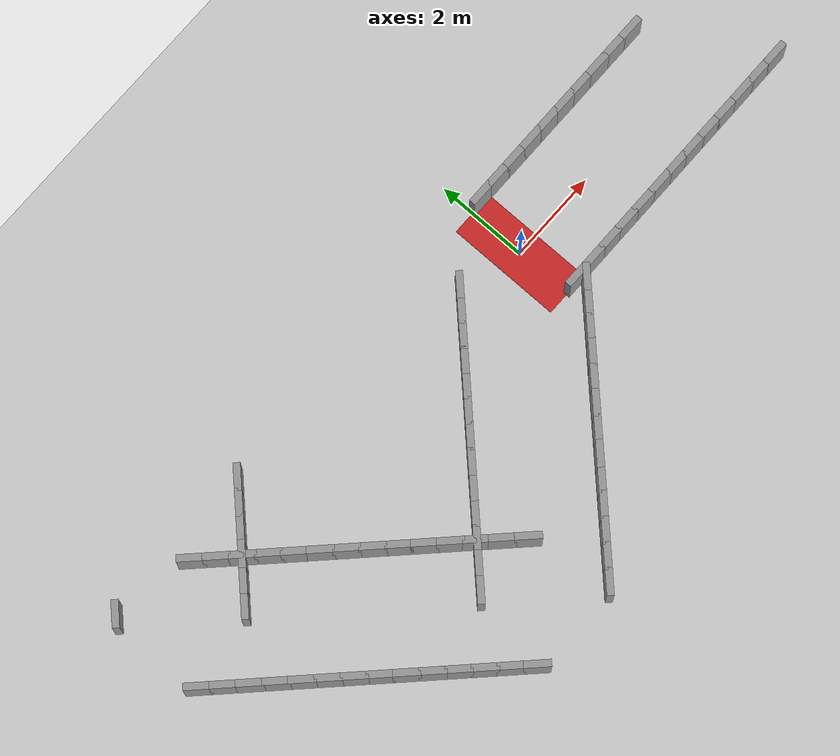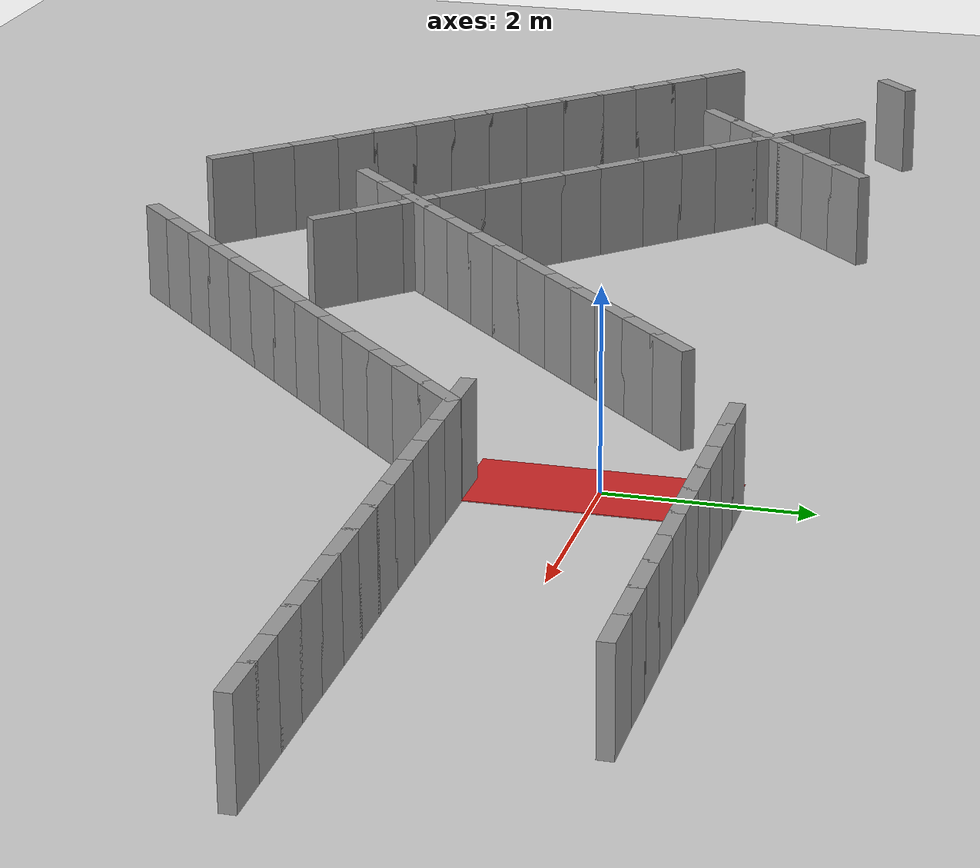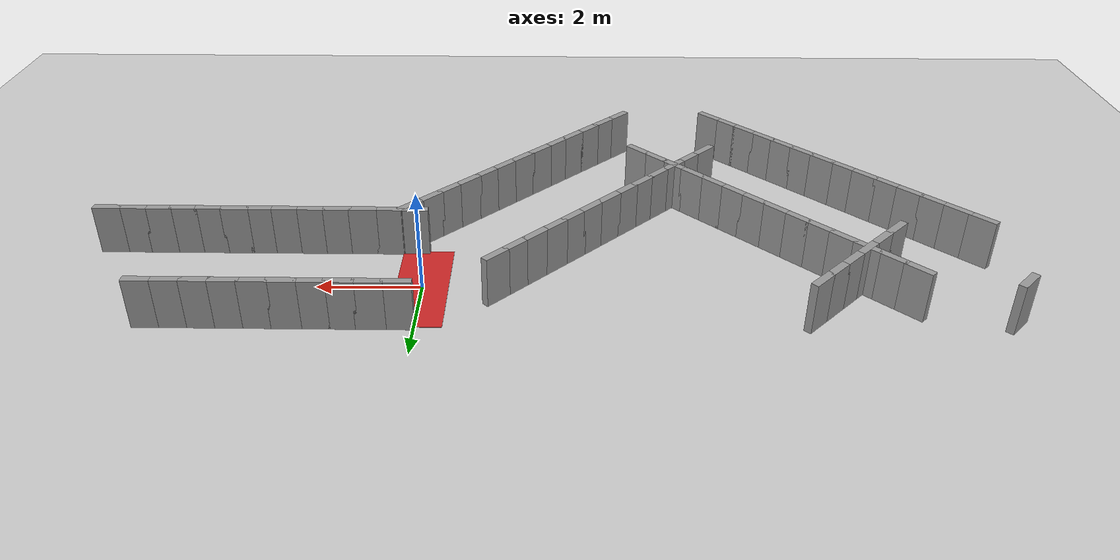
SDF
<sdf version="1.6">
 <world name="robot_harmonic_track">
  <include><uri>model://sun</uri></include>
  <include><uri>model://ground_plane</uri></include>
  <model name="wall_inner_0">
   <pose>0.25 1.25 0.5 0 0 0.0</pose>
   <static>1</static>
   <link name="link">
    <collision name="collision"><geometry><box><size>0.55 0.15 1.0</size></box></geometry></collision>
    <visual name="visual">
     <geometry><box><size>0.55 0.15 1.0</size></box></geometry>
     <material>
      <script><uri>file://media/materials/scripts/gazebo.material</uri><name>Gazebo/Grey</name></script>
     </material>
    </visual>
   </link>
  </model>
  <model name="wall_outer_0">
   <pose>0.25 -1.25 0.5 0 0 0.0</pose>
   <static>1</static>
   <link name="link">
    <collision name="collision"><geometry><box><size>0.55 0.15 1.0</size></box></geometry></collision>
    <visual name="visual">
     <geometry><box><size>0.55 0.15 1.0</size></box></geometry>
     <material>
      <script><uri>file://media/materials/scripts/gazebo.material</uri><name>Gazebo/Grey</name></script>
     </material>
    </visual>
   </link>
  </model>
  <model name="wall_inner_1">
   <pose>0.75 1.25 0.5 0 0 0.0</pose>
   <static>1</static>
   <link name="link">
    <collision name="collision"><geometry><box><size>0.55 0.15 1.0</size></box></geometry></collision>
    <visual name="visual">
     <geometry><box><size>0.55 0.15 1.0</size></box></geometry>
     <material>
      <script><uri>file://media/materials/scripts/gazebo.material</uri><name>Gazebo/Grey</name></script>
     </material>
    </visual>
   </link>
  </model>
  <model name="wall_outer_1">
   <pose>0.75 -1.25 0.5 0 0 0.0</pose>
   <static>1</static>
   <link name="link">
    <collision name="collision"><geometry><box><size>0.55 0.15 1.0</size></box></geometry></collision>
    <visual name="visual">
     <geometry><box><size>0.55 0.15 1.0</size></box></geometry>
     <material>
      <script><uri>file://media/materials/scripts/gazebo.material</uri><name>Gazebo/Grey</name></script>
     </material>
    </visual>
   </link>
  </model>
  <model name="wall_inner_2">
   <pose>1.25 1.25 0.5 0 0 0.0</pose>
   <static>1</static>
   <link name="link">
    <collision name="collision"><geometry><box><size>0.55 0.15 1.0</size></box></geometry></collision>
    <visual name="visual">
     <geometry><box><size>0.55 0.15 1.0</size></box></geometry>
     <material>
      <script><uri>file://media/materials/scripts/gazebo.material</uri><name>Gazebo/Grey</name></script>
     </material>
    </visual>
   </link>
  </model>
  <model name="wall_outer_2">
   <pose>1.25 -1.25 0.5 0 0 0.0</pose>
   <static>1</static>
   <link name="link">
    <collision name="collision"><geometry><box><size>0.55 0.15 1.0</size></box></geometry></collision>
    <visual name="visual">
     <geometry><box><size>0.55 0.15 1.0</size></box></geometry>
     <material>
      <script><uri>file://media/materials/scripts/gazebo.material</uri><name>Gazebo/Grey</name></script>
     </material>
    </visual>
   </link>
  </model>
  <model name="wall_inner_3">
   <pose>1.75 1.25 0.5 0 0 0.0</pose>
   <static>1</static>
   <link name="link">
    <collision name="collision"><geometry><box><size>0.55 0.15 1.0</size></box></geometry></collision>
    <visual name="visual">
     <geometry><box><size>0.55 0.15 1.0</size></box></geometry>
     <material>
      <script><uri>file://media/materials/scripts/gazebo.material</uri><name>Gazebo/Grey</name></script>
     </material>
    </visual>
   </link>
  </model>
  <model name="wall_outer_3">
   <pose>1.75 -1.25 0.5 0 0 0.0</pose>
   <static>1</static>
   <link name="link">
    <collision name="collision"><geometry><box><size>0.55 0.15 1.0</size></box></geometry></collision>
    <visual name="visual">
     <geometry><box><size>0.55 0.15 1.0</size></box></geometry>
     <material>
      <script><uri>file://media/materials/scripts/gazebo.material</uri><name>Gazebo/Grey</name></script>
     </material>
    </visual>
   </link>
  </model>
  <model name="wall_inner_4">
   <pose>2.25 1.25 0.5 0 0 0.0</pose>
   <static>1</static>
   <link name="link">
    <collision name="collision"><geometry><box><size>0.55 0.15 1.0</size></box></geometry></collision>
    <visual name="visual">
     <geometry><box><size>0.55 0.15 1.0</size></box></geometry>
     <material>
      <script><uri>file://media/materials/scripts/gazebo.material</uri><name>Gazebo/Grey</name></script>
     </material>
    </visual>
   </link>
  </model>
  <model name="wall_outer_4">
   <pose>2.25 -1.25 0.5 0 0 0.0</pose>
   <static>1</static>
   <link name="link">
    <collision name="collision"><geometry><box><size>0.55 0.15 1.0</size></box></geometry></collision>
    <visual name="visual">
     <geometry><box><size>0.55 0.15 1.0</size></box></geometry>
     <material>
      <script><uri>file://media/materials/scripts/gazebo.material</uri><name>Gazebo/Grey</name></script>
     </material>
    </visual>
   </link>
  </model>
  <model name="wall_inner_5">
   <pose>2.75 1.25 0.5 0 0 0.0</pose>
   <static>1</static>
   <link name="link">
    <collision name="collision"><geometry><box><size>0.55 0.15 1.0</size></box></geometry></collision>
    <visual name="visual">
     <geometry><box><size>0.55 0.15 1.0</size></box></geometry>
     <material>
      <script><uri>file://media/materials/scripts/gazebo.material</uri><name>Gazebo/Grey</name></script>
     </material>
    </visual>
   </link>
  </model>
  <model name="wall_outer_5">
   <pose>2.75 -1.25 0.5 0 0 0.0</pose>
   <static>1</static>
   <link name="link">
    <collision name="collision"><geometry><box><size>0.55 0.15 1.0</size></box></geometry></collision>
    <visual name="visual">
     <geometry><box><size>0.55 0.15 1.0</size></box></geometry>
     <material>
      <script><uri>file://media/materials/scripts/gazebo.material</uri><name>Gazebo/Grey</name></script>
     </material>
    </visual>
   </link>
  </model>
  <model name="wall_inner_6">
   <pose>3.25 1.25 0.5 0 0 0.0</pose>
   <static>1</static>
   <link name="link">
    <collision name="collision"><geometry><box><size>0.55 0.15 1.0</size></box></geometry></collision>
    <visual name="visual">
     <geometry><box><size>0.55 0.15 1.0</size></box></geometry>
     <material>
      <script><uri>file://media/materials/scripts/gazebo.material</uri><name>Gazebo/Grey</name></script>
     </material>
    </visual>
   </link>
  </model>
  <model name="wall_outer_6">
   <pose>3.25 -1.25 0.5 0 0 0.0</pose>
   <static>1</static>
   <link name="link">
    <collision name="collision"><geometry><box><size>0.55 0.15 1.0</size></box></geometry></collision>
    <visual name="visual">
     <geometry><box><size>0.55 0.15 1.0</size></box></geometry>
     <material>
      <script><uri>file://media/materials/scripts/gazebo.material</uri><name>Gazebo/Grey</name></script>
     </material>
    </visual>
   </link>
  </model>
  <model name="wall_inner_7">
   <pose>3.75 1.25 0.5 0 0 0.0</pose>
   <static>1</static>
   <link name="link">
    <collision name="collision"><geometry><box><size>0.55 0.15 1.0</size></box></geometry></collision>
    <visual name="visual">
     <geometry><box><size>0.55 0.15 1.0</size></box></geometry>
     <material>
      <script><uri>file://media/materials/scripts/gazebo.material</uri><name>Gazebo/Grey</name></script>
     </material>
    </visual>
   </link>
  </model>
  <model name="wall_outer_7">
   <pose>3.75 -1.25 0.5 0 0 0.0</pose>
   <static>1</static>
   <link name="link">
    <collision name="collision"><geometry><box><size>0.55 0.15 1.0</size></box></geometry></collision>
    <visual name="visual">
     <geometry><box><size>0.55 0.15 1.0</size></box></geometry>
     <material>
      <script><uri>file://media/materials/scripts/gazebo.material</uri><name>Gazebo/Grey</name></script>
     </material>
    </visual>
   </link>
  </model>
  <model name="wall_inner_8">
   <pose>4.25 1.25 0.5 0 0 0.0</pose>
   <static>1</static>
   <link name="link">
    <collision name="collision"><geometry><box><size>0.55 0.15 1.0</size></box></geometry></collision>
    <visual name="visual">
     <geometry><box><size>0.55 0.15 1.0</size></box></geometry>
     <material>
      <script><uri>file://media/materials/scripts/gazebo.material</uri><name>Gazebo/Grey</name></script>
     </material>
    </visual>
   </link>
  </model>
  <model name="wall_outer_8">
   <pose>4.25 -1.25 0.5 0 0 0.0</pose>
   <static>1</static>
   <link name="link">
    <collision name="collision"><geometry><box><size>0.55 0.15 1.0</size></box></geometry></collision>
    <visual name="visual">
     <geometry><box><size>0.55 0.15 1.0</size></box></geometry>
     <material>
      <script><uri>file://media/materials/scripts/gazebo.material</uri><name>Gazebo/Grey</name></script>
     </material>
    </visual>
   </link>
  </model>
  <model name="wall_inner_9">
   <pose>4.75 1.25 0.5 0 0 0.0</pose>
   <static>1</static>
   <link name="link">
    <collision name="collision"><geometry><box><size>0.55 0.15 1.0</size></box></geometry></collision>
    <visual name="visual">
     <geometry><box><size>0.55 0.15 1.0</size></box></geometry>
     <material>
      <script><uri>file://media/materials/scripts/gazebo.material</uri><name>Gazebo/Grey</name></script>
     </material>
    </visual>
   </link>
  </model>
  <model name="wall_outer_9">
   <pose>4.75 -1.25 0.5 0 0 0.0</pose>
   <static>1</static>
   <link name="link">
    <collision name="collision"><geometry><box><size>0.55 0.15 1.0</size></box></geometry></collision>
    <visual name="visual">
     <geometry><box><size>0.55 0.15 1.0</size></box></geometry>
     <material>
      <script><uri>file://media/materials/scripts/gazebo.material</uri><name>Gazebo/Grey</name></script>
     </material>
    </visual>
   </link>
  </model>
  <model name="wall_outer_10">
   <pose>5.25 -1.25 0.5 0 0 0.0</pose>
   <static>1</static>
   <link name="link">
    <collision name="collision"><geometry><box><size>0.55 0.15 1.0</size></box></geometry></collision>
    <visual name="visual">
     <geometry><box><size>0.55 0.15 1.0</size></box></geometry>
     <material>
      <script><uri>file://media/materials/scripts/gazebo.material</uri><name>Gazebo/Grey</name></script>
     </material>
    </visual>
   </link>
  </model>
  <model name="wall_outer_11">
   <pose>5.75 -1.25 0.5 0 0 0.0</pose>
   <static>1</static>
   <link name="link">
    <collision name="collision"><geometry><box><size>0.55 0.15 1.0</size></box></geometry></collision>
    <visual name="visual">
     <geometry><box><size>0.55 0.15 1.0</size></box></geometry>
     <material>
      <script><uri>file://media/materials/scripts/gazebo.material</uri><name>Gazebo/Grey</name></script>
     </material>
    </visual>
   </link>
  </model>
  <model name="wall_outer_12">
   <pose>6.25 -1.25 0.5 0 0 0.0</pose>
   <static>1</static>
   <link name="link">
    <collision name="collision"><geometry><box><size>0.55 0.15 1.0</size></box></geometry></collision>
    <visual name="visual">
     <geometry><box><size>0.55 0.15 1.0</size></box></geometry>
     <material>
      <script><uri>file://media/materials/scripts/gazebo.material</uri><name>Gazebo/Grey</name></script>
     </material>
    </visual>
   </link>
  </model>
  <model name="wall_inner_179">
   <pose>-7.151830809231103 1.080402237802529 0.5 0 0 -2.356194490192346</pose>
   <static>1</static>
   <link name="link">
    <collision name="collision">
     <geometry><box><size>0.5550762722761068 0.15 1.0</size></box></geometry>
    </collision>
    <visual name="visual">
     <geometry><box><size>0.5550762722761068 0.15 1.0</size></box></geometry>
     <material>
      <script><uri>file://media/materials/scripts/gazebo.material</uri><name>Gazebo/Grey</name></script>
     </material>
    </visual>
   </link>
  </model>
  <model name="wall_inner_180">
   <pose>-7.508973666373956 0.7232593806596742 0.5 0 0 -2.356194490192343</pose>
   <static>1</static>
   <link name="link">
    <collision name="collision">
     <geometry><box><size>0.5550762722761046 0.15 1.0</size></box></geometry>
    </collision>
    <visual name="visual">
     <geometry><box><size>0.5550762722761046 0.15 1.0</size></box></geometry>
     <material>
      <script><uri>file://media/materials/scripts/gazebo.material</uri><name>Gazebo/Grey</name></script>
     </material>
    </visual>
   </link>
  </model>
  <model name="wall_inner_181">
   <pose>-7.8661165235168165 0.36611652351681456 0.5 0 0 -2.356194490192346</pose>
   <static>1</static>
   <link name="link">
    <collision name="collision">
     <geometry><box><size>0.5550762722761055 0.15 1.0</size></box></geometry>
    </collision>
    <visual name="visual">
     <geometry><box><size>0.5550762722761055 0.15 1.0</size></box></geometry>
     <material>
      <script><uri>file://media/materials/scripts/gazebo.material</uri><name>Gazebo/Grey</name></script>
     </material>
    </visual>
   </link>
  </model>
  <model name="wall_inner_182">
   <pose>-8.223259380659671 0.008973666373960243 0.5 0 0 -2.356194490192343</pose>
   <static>1</static>
   <link name="link">
    <collision name="collision">
     <geometry><box><size>0.5550762722761046 0.15 1.0</size></box></geometry>
    </collision>
    <visual name="visual">
     <geometry><box><size>0.5550762722761046 0.15 1.0</size></box></geometry>
     <material>
      <script><uri>file://media/materials/scripts/gazebo.material</uri><name>Gazebo/Grey</name></script>
     </material>
    </visual>
   </link>
  </model>
  <model name="wall_inner_183">
   <pose>-8.580402237802529 -0.34816919076889874 0.5 0 0 -2.356194490192345</pose>
   <static>1</static>
   <link name="link">
    <collision name="collision">
     <geometry><box><size>0.5550762722761061 0.15 1.0</size></box></geometry>
    </collision>
    <visual name="visual">
     <geometry><box><size>0.5550762722761061 0.15 1.0</size></box></geometry>
     <material>
      <script><uri>file://media/materials/scripts/gazebo.material</uri><name>Gazebo/Grey</name></script>
     </material>
    </visual>
   </link>
  </model>
  <model name="wall_inner_184">
   <pose>-8.937545094945389 -0.7053120479117571 0.5 0 0 -2.356194490192346</pose>
   <static>1</static>
   <link name="link">
    <collision name="collision">
     <geometry><box><size>0.5550762722761055 0.15 1.0</size></box></geometry>
    </collision>
    <visual name="visual">
     <geometry><box><size>0.5550762722761055 0.15 1.0</size></box></geometry>
     <material>
      <script><uri>file://media/materials/scripts/gazebo.material</uri><name>Gazebo/Grey</name></script>
     </material>
    </visual>
   </link>
  </model>
  <model name="wall_outer_184">
   <pose>-10.705312047911754 1.0624549050546137 0.5 0 0 -2.356194490192346</pose>
   <static>1</static>
   <link name="link">
    <collision name="collision">
     <geometry><box><size>0.5550762722761055 0.15 1.0</size></box></geometry>
    </collision>
    <visual name="visual">
     <geometry><box><size>0.5550762722761055 0.15 1.0</size></box></geometry>
     <material>
      <script><uri>file://media/materials/scripts/gazebo.material</uri><name>Gazebo/Grey</name></script>
     </material>
    </visual>
   </link>
  </model>
  <model name="wall_inner_185">
   <pose>-8.937545094945387 0.7053120479117565 0.5 0 0 -0.7853981633974475</pose>
   <static>1</static>
   <link name="link">
    <collision name="collision">
     <geometry><box><size>0.5550762722761058 0.15 1.0</size></box></geometry>
    </collision>
    <visual name="visual">
     <geometry><box><size>0.5550762722761058 0.15 1.0</size></box></geometry>
     <material>
      <script><uri>file://media/materials/scripts/gazebo.material</uri><name>Gazebo/Grey</name></script>
     </material>
    </visual>
   </link>
  </model>
  <model name="wall_outer_185">
   <pose>-10.705312047911756 -1.0624549050546137 0.5 0 0 -0.7853981633974475</pose>
   <static>1</static>
   <link name="link">
    <collision name="collision">
     <geometry><box><size>0.5550762722761058 0.15 1.0</size></box></geometry>
    </collision>
    <visual name="visual">
     <geometry><box><size>0.5550762722761058 0.15 1.0</size></box></geometry>
     <material>
      <script><uri>file://media/materials/scripts/gazebo.material</uri><name>Gazebo/Grey</name></script>
     </material>
    </visual>
   </link>
  </model>
  <model name="wall_inner_186">
   <pose>-8.580402237802529 0.3481691907688972 0.5 0 0 -0.78539816339745</pose>
   <static>1</static>
   <link name="link">
    <collision name="collision">
     <geometry><box><size>0.5550762722761045 0.15 1.0</size></box></geometry>
    </collision>
    <visual name="visual">
     <geometry><box><size>0.5550762722761045 0.15 1.0</size></box></geometry>
     <material>
      <script><uri>file://media/materials/scripts/gazebo.material</uri><name>Gazebo/Grey</name></script>
     </material>
    </visual>
   </link>
  </model>
  <model name="wall_outer_186">
   <pose>-10.348169190768902 -1.4195977621974682 0.5 0 0 -0.78539816339745</pose>
   <static>1</static>
   <link name="link">
    <collision name="collision">
     <geometry><box><size>0.5550762722761045 0.15 1.0</size></box></geometry>
    </collision>
    <visual name="visual">
     <geometry><box><size>0.5550762722761045 0.15 1.0</size></box></geometry>
     <material>
      <script><uri>file://media/materials/scripts/gazebo.material</uri><name>Gazebo/Grey</name></script>
     </material>
    </visual>
   </link>
  </model>
  <model name="wall_inner_187">
   <pose>-8.223259380659673 -0.008973666373957911 0.5 0 0 -0.7853981633974477</pose>
   <static>1</static>
   <link name="link">
    <collision name="collision">
     <geometry><box><size>0.5550762722761058 0.15 1.0</size></box></geometry>
    </collision>
    <visual name="visual">
     <geometry><box><size>0.5550762722761058 0.15 1.0</size></box></geometry>
     <material>
      <script><uri>file://media/materials/scripts/gazebo.material</uri><name>Gazebo/Grey</name></script>
     </material>
    </visual>
   </link>
  </model>
  <model name="wall_outer_187">
   <pose>-9.991026333626042 -1.7767406193403277 0.5 0 0 -0.7853981633974477</pose>
   <static>1</static>
   <link name="link">
    <collision name="collision">
     <geometry><box><size>0.5550762722761058 0.15 1.0</size></box></geometry>
    </collision>
    <visual name="visual">
     <geometry><box><size>0.5550762722761058 0.15 1.0</size></box></geometry>
     <material>
      <script><uri>file://media/materials/scripts/gazebo.material</uri><name>Gazebo/Grey</name></script>
     </material>
    </visual>
   </link>
  </model>
  <model name="wall_inner_188">
   <pose>-7.8661165235168165 -0.3661165235168149 0.5 0 0 -0.7853981633974474</pose>
   <static>1</static>
   <link name="link">
    <collision name="collision">
     <geometry><box><size>0.5550762722761057 0.15 1.0</size></box></geometry>
    </collision>
    <visual name="visual">
     <geometry><box><size>0.5550762722761057 0.15 1.0</size></box></geometry>
     <material>
      <script><uri>file://media/materials/scripts/gazebo.material</uri><name>Gazebo/Grey</name></script>
     </material>
    </visual>
   </link>
  </model>
  <model name="wall_outer_188">
   <pose>-9.633883476483184 -2.1338834764831853 0.5 0 0 -0.7853981633974474</pose>
   <static>1</static>
   <link name="link">
    <collision name="collision">
     <geometry><box><size>0.5550762722761057 0.15 1.0</size></box></geometry>
    </collision>
    <visual name="visual">
     <geometry><box><size>0.5550762722761057 0.15 1.0</size></box></geometry>
     <material>
      <script><uri>file://media/materials/scripts/gazebo.material</uri><name>Gazebo/Grey</name></script>
     </material>
    </visual>
   </link>
  </model>
  <model name="wall_inner_189">
   <pose>-7.508973666373958 -0.7232593806596724 0.5 0 0 -0.785398163397448</pose>
   <static>1</static>
   <link name="link">
    <collision name="collision">
     <geometry><box><size>0.555076272276106 0.15 1.0</size></box></geometry>
    </collision>
    <visual name="visual">
     <geometry><box><size>0.555076272276106 0.15 1.0</size></box></geometry>
     <material>
      <script><uri>file://media/materials/scripts/gazebo.material</uri><name>Gazebo/Grey</name></script>
     </material>
    </visual>
   </link>
  </model>
  <model name="wall_outer_189">
   <pose>-9.276740619340327 -2.491026333626042 0.5 0 0 -0.785398163397448</pose>
   <static>1</static>
   <link name="link">
    <collision name="collision">
     <geometry><box><size>0.555076272276106 0.15 1.0</size></box></geometry>
    </collision>
    <visual name="visual">
     <geometry><box><size>0.555076272276106 0.15 1.0</size></box></geometry>
     <material>
      <script><uri>file://media/materials/scripts/gazebo.material</uri><name>Gazebo/Grey</name></script>
     </material>
    </visual>
   </link>
  </model>
  <model name="wall_inner_190">
   <pose>-7.1518308092310985 -1.0804022378025313 0.5 0 0 -0.7853981633974498</pose>
   <static>1</static>
   <link name="link">
    <collision name="collision">
     <geometry><box><size>0.5550762722761043 0.15 1.0</size></box></geometry>
    </collision>
    <visual name="visual">
     <geometry><box><size>0.5550762722761043 0.15 1.0</size></box></geometry>
     <material>
      <script><uri>file://media/materials/scripts/gazebo.material</uri><name>Gazebo/Grey</name></script>
     </material>
    </visual>
   </link>
  </model>
  <model name="wall_outer_190">
   <pose>-8.919597762197471 -2.8481691907688975 0.5 0 0 -0.7853981633974498</pose>
   <static>1</static>
   <link name="link">
    <collision name="collision">
     <geometry><box><size>0.5550762722761043 0.15 1.0</size></box></geometry>
    </collision>
    <visual name="visual">
     <geometry><box><size>0.5550762722761043 0.15 1.0</size></box></geometry>
     <material>
      <script><uri>file://media/materials/scripts/gazebo.material</uri><name>Gazebo/Grey</name></script>
     </material>
    </visual>
   </link>
  </model>
  <model name="wall_inner_191">
   <pose>-6.794687952088245 -1.4375450949453863 0.5 0 0 -0.7853981633974477</pose>
   <static>1</static>
   <link name="link">
    <collision name="collision">
     <geometry><box><size>0.5550762722761058 0.15 1.0</size></box></geometry>
    </collision>
    <visual name="visual">
     <geometry><box><size>0.5550762722761058 0.15 1.0</size></box></geometry>
     <material>
      <script><uri>file://media/materials/scripts/gazebo.material</uri><name>Gazebo/Grey</name></script>
     </material>
    </visual>
   </link>
  </model>
  <model name="wall_outer_191">
   <pose>-8.562454905054613 -3.205312047911756 0.5 0 0 -0.7853981633974477</pose>
   <static>1</static>
   <link name="link">
    <collision name="collision">
     <geometry><box><size>0.5550762722761058 0.15 1.0</size></box></geometry>
    </collision>
    <visual name="visual">
     <geometry><box><size>0.5550762722761058 0.15 1.0</size></box></geometry>
     <material>
      <script><uri>file://media/materials/scripts/gazebo.material</uri><name>Gazebo/Grey</name></script>
     </material>
    </visual>
   </link>
  </model>
  <model name="wall_inner_192">
   <pose>-6.437545094945387 -1.794687952088244 0.5 0 0 -0.7853981633974483</pose>
   <static>1</static>
   <link name="link">
    <collision name="collision">
     <geometry><box><size>0.5550762722761049 0.15 1.0</size></box></geometry>
    </collision>
    <visual name="visual">
     <geometry><box><size>0.5550762722761049 0.15 1.0</size></box></geometry>
     <material>
      <script><uri>file://media/materials/scripts/gazebo.material</uri><name>Gazebo/Grey</name></script>
     </material>
    </visual>
   </link>
  </model>
  <model name="wall_outer_192">
   <pose>-8.205312047911756 -3.562454905054613 0.5 0 0 -0.7853981633974483</pose>
   <static>1</static>
   <link name="link">
    <collision name="collision">
     <geometry><box><size>0.5550762722761049 0.15 1.0</size></box></geometry>
    </collision>
    <visual name="visual">
     <geometry><box><size>0.5550762722761049 0.15 1.0</size></box></geometry>
     <material>
      <script><uri>file://media/materials/scripts/gazebo.material</uri><name>Gazebo/Grey</name></script>
     </material>
    </visual>
   </link>
  </model>
  <model name="wall_inner_193">
   <pose>-6.08040223780253 -2.151830809231101 0.5 0 0 -0.7853981633974483</pose>
   <static>1</static>
   <link name="link">
    <collision name="collision">
     <geometry><box><size>0.5550762722761061 0.15 1.0</size></box></geometry>
    </collision>
    <visual name="visual">
     <geometry><box><size>0.5550762722761061 0.15 1.0</size></box></geometry>
     <material>
      <script><uri>file://media/materials/scripts/gazebo.material</uri><name>Gazebo/Grey</name></script>
     </material>
    </visual>
   </link>
  </model>
  <model name="wall_outer_193">
   <pose>-7.848169190768899 -3.91959776219747 0.5 0 0 -0.7853981633974483</pose>
   <static>1</static>
   <link name="link">
    <collision name="collision">
     <geometry><box><size>0.5550762722761061 0.15 1.0</size></box></geometry>
    </collision>
    <visual name="visual">
     <geometry><box><size>0.5550762722761061 0.15 1.0</size></box></geometry>
     <material>
      <script><uri>file://media/materials/scripts/gazebo.material</uri><name>Gazebo/Grey</name></script>
     </material>
    </visual>
   </link>
  </model>
  <model name="wall_inner_194">
   <pose>-5.723259380659672 -2.5089736663739592 0.5 0 0 -0.785398163397449</pose>
   <static>1</static>
   <link name="link">
    <collision name="collision">
     <geometry><box><size>0.5550762722761052 0.15 1.0</size></box></geometry>
    </collision>
    <visual name="visual">
     <geometry><box><size>0.5550762722761052 0.15 1.0</size></box></geometry>
     <material>
      <script><uri>file://media/materials/scripts/gazebo.material</uri><name>Gazebo/Grey</name></script>
     </material>
    </visual>
   </link>
  </model>
  <model name="wall_outer_194">
   <pose>-7.491026333626043 -4.276740619340327 0.5 0 0 -0.785398163397449</pose>
   <static>1</static>
   <link name="link">
    <collision name="collision">
     <geometry><box><size>0.5550762722761052 0.15 1.0</size></box></geometry>
    </collision>
    <visual name="visual">
     <geometry><box><size>0.5550762722761052 0.15 1.0</size></box></geometry>
     <material>
      <script><uri>file://media/materials/scripts/gazebo.material</uri><name>Gazebo/Grey</name></script>
     </material>
    </visual>
   </link>
  </model>
  <model name="wall_inner_195">
   <pose>-5.3661165235168165 -2.8661165235168147 0.5 0 0 -0.7853981633974471</pose>
   <static>1</static>
   <link name="link">
    <collision name="collision">
     <geometry><box><size>0.5550762722761055 0.15 1.0</size></box></geometry>
    </collision>
    <visual name="visual">
     <geometry><box><size>0.5550762722761055 0.15 1.0</size></box></geometry>
     <material>
      <script><uri>file://media/materials/scripts/gazebo.material</uri><name>Gazebo/Grey</name></script>
     </material>
    </visual>
   </link>
  </model>
  <model name="wall_outer_195">
   <pose>-7.1338834764831835 -4.633883476483185 0.5 0 0 -0.7853981633974471</pose>
   <static>1</static>
   <link name="link">
    <collision name="collision">
     <geometry><box><size>0.5550762722761055 0.15 1.0</size></box></geometry>
    </collision>
    <visual name="visual">
     <geometry><box><size>0.5550762722761055 0.15 1.0</size></box></geometry>
     <material>
      <script><uri>file://media/materials/scripts/gazebo.material</uri><name>Gazebo/Grey</name></script>
     </material>
    </visual>
   </link>
  </model>
  <model name="wall_inner_196">
   <pose>-5.008973666373957 -3.2232593806596728 0.5 0 0 -0.785398163397449</pose>
   <static>1</static>
   <link name="link">
    <collision name="collision">
     <geometry><box><size>0.5550762722761052 0.15 1.0</size></box></geometry>
    </collision>
    <visual name="visual">
     <geometry><box><size>0.5550762722761052 0.15 1.0</size></box></geometry>
     <material>
      <script><uri>file://media/materials/scripts/gazebo.material</uri><name>Gazebo/Grey</name></script>
     </material>
    </visual>
   </link>
  </model>
  <model name="wall_outer_196">
   <pose>-6.776740619340328 -4.99102633362604 0.5 0 0 -0.785398163397449</pose>
   <static>1</static>
   <link name="link">
    <collision name="collision">
     <geometry><box><size>0.5550762722761052 0.15 1.0</size></box></geometry>
    </collision>
    <visual name="visual">
     <geometry><box><size>0.5550762722761052 0.15 1.0</size></box></geometry>
     <material>
      <script><uri>file://media/materials/scripts/gazebo.material</uri><name>Gazebo/Grey</name></script>
     </material>
    </visual>
   </link>
  </model>
  <model name="wall_inner_197">
   <pose>-4.651830809231101 -3.58040223780253 0.5 0 0 -0.7853981633974483</pose>
   <static>1</static>
   <link name="link">
    <collision name="collision">
     <geometry><box><size>0.5550762722761061 0.15 1.0</size></box></geometry>
    </collision>
    <visual name="visual">
     <geometry><box><size>0.5550762722761061 0.15 1.0</size></box></geometry>
     <material>
      <script><uri>file://media/materials/scripts/gazebo.material</uri><name>Gazebo/Grey</name></script>
     </material>
    </visual>
   </link>
  </model>
  <model name="wall_outer_197">
   <pose>-6.41959776219747 -5.348169190768899 0.5 0 0 -0.7853981633974483</pose>
   <static>1</static>
   <link name="link">
    <collision name="collision">
     <geometry><box><size>0.5550762722761061 0.15 1.0</size></box></geometry>
    </collision>
    <visual name="visual">
     <geometry><box><size>0.5550762722761061 0.15 1.0</size></box></geometry>
     <material>
      <script><uri>file://media/materials/scripts/gazebo.material</uri><name>Gazebo/Grey</name></script>
     </material>
    </visual>
   </link>
  </model>
  <model name="wall_inner_198">
   <pose>-4.294687952088244 -3.9375450949453867 0.5 0 0 -0.7853981633974483</pose>
   <static>1</static>
   <link name="link">
    <collision name="collision">
     <geometry><box><size>0.5550762722761049 0.15 1.0</size></box></geometry>
    </collision>
    <visual name="visual">
     <geometry><box><size>0.5550762722761049 0.15 1.0</size></box></geometry>
     <material>
      <script><uri>file://media/materials/scripts/gazebo.material</uri><name>Gazebo/Grey</name></script>
     </material>
    </visual>
   </link>
  </model>
  <model name="wall_outer_198">
   <pose>-6.062454905054613 -5.705312047911756 0.5 0 0 -0.7853981633974483</pose>
   <static>1</static>
   <link name="link">
    <collision name="collision">
     <geometry><box><size>0.5550762722761049 0.15 1.0</size></box></geometry>
    </collision>
    <visual name="visual">
     <geometry><box><size>0.5550762722761049 0.15 1.0</size></box></geometry>
     <material>
      <script><uri>file://media/materials/scripts/gazebo.material</uri><name>Gazebo/Grey</name></script>
     </material>
    </visual>
   </link>
  </model>
  <model name="wall_inner_199">
   <pose>-5.705312047911756 -3.9375450949453867 0.5 0 0 0.7853981633974483</pose>
   <static>1</static>
   <link name="link">
    <collision name="collision">
     <geometry><box><size>0.5550762722761049 0.15 1.0</size></box></geometry>
    </collision>
    <visual name="visual">
     <geometry><box><size>0.5550762722761049 0.15 1.0</size></box></geometry>
     <material>
      <script><uri>file://media/materials/scripts/gazebo.material</uri><name>Gazebo/Grey</name></script>
     </material>
    </visual>
   </link>
  </model>
  <model name="wall_outer_199">
   <pose>-3.9375450949453867 -5.705312047911756 0.5 0 0 0.7853981633974483</pose>
   <static>1</static>
   <link name="link">
    <collision name="collision">
     <geometry><box><size>0.5550762722761049 0.15 1.0</size></box></geometry>
    </collision>
    <visual name="visual">
     <geometry><box><size>0.5550762722761049 0.15 1.0</size></box></geometry>
     <material>
      <script><uri>file://media/materials/scripts/gazebo.material</uri><name>Gazebo/Grey</name></script>
     </material>
    </visual>
   </link>
  </model>
  <model name="wall_inner_200">
   <pose>-5.348169190768899 -3.58040223780253 0.5 0 0 0.7853981633974483</pose>
   <static>1</static>
   <link name="link">
    <collision name="collision">
     <geometry><box><size>0.5550762722761061 0.15 1.0</size></box></geometry>
    </collision>
    <visual name="visual">
     <geometry><box><size>0.5550762722761061 0.15 1.0</size></box></geometry>
     <material>
      <script><uri>file://media/materials/scripts/gazebo.material</uri><name>Gazebo/Grey</name></script>
     </material>
    </visual>
   </link>
  </model>
  <model name="wall_outer_200">
   <pose>-3.58040223780253 -5.348169190768899 0.5 0 0 0.7853981633974483</pose>
   <static>1</static>
   <link name="link">
    <collision name="collision">
     <geometry><box><size>0.5550762722761061 0.15 1.0</size></box></geometry>
    </collision>
    <visual name="visual">
     <geometry><box><size>0.5550762722761061 0.15 1.0</size></box></geometry>
     <material>
      <script><uri>file://media/materials/scripts/gazebo.material</uri><name>Gazebo/Grey</name></script>
     </material>
    </visual>
   </link>
  </model>
  <model name="wall_inner_201">
   <pose>-4.991026333626042 -3.223259380659673 0.5 0 0 0.7853981633974483</pose>
   <static>1</static>
   <link name="link">
    <collision name="collision">
     <geometry><box><size>0.5550762722761049 0.15 1.0</size></box></geometry>
    </collision>
    <visual name="visual">
     <geometry><box><size>0.5550762722761049 0.15 1.0</size></box></geometry>
     <material>
      <script><uri>file://media/materials/scripts/gazebo.material</uri><name>Gazebo/Grey</name></script>
     </material>
    </visual>
   </link>
  </model>
  <model name="wall_outer_201">
   <pose>-3.223259380659673 -4.991026333626042 0.5 0 0 0.7853981633974483</pose>
   <static>1</static>
   <link name="link">
    <collision name="collision">
     <geometry><box><size>0.5550762722761049 0.15 1.0</size></box></geometry>
    </collision>
    <visual name="visual">
     <geometry><box><size>0.5550762722761049 0.15 1.0</size></box></geometry>
     <material>
      <script><uri>file://media/materials/scripts/gazebo.material</uri><name>Gazebo/Grey</name></script>
     </material>
    </visual>
   </link>
  </model>
  <model name="wall_inner_202">
   <pose>-4.633883476483184 -2.8661165235168156 0.5 0 0 0.7853981633974483</pose>
   <static>1</static>
   <link name="link">
    <collision name="collision">
     <geometry><box><size>0.5550762722761056 0.15 1.0</size></box></geometry>
    </collision>
    <visual name="visual">
     <geometry><box><size>0.5550762722761056 0.15 1.0</size></box></geometry>
     <material>
      <script><uri>file://media/materials/scripts/gazebo.material</uri><name>Gazebo/Grey</name></script>
     </material>
    </visual>
   </link>
  </model>
  <model name="wall_outer_202">
   <pose>-2.8661165235168156 -4.633883476483184 0.5 0 0 0.7853981633974483</pose>
   <static>1</static>
   <link name="link">
    <collision name="collision">
     <geometry><box><size>0.5550762722761056 0.15 1.0</size></box></geometry>
    </collision>
    <visual name="visual">
     <geometry><box><size>0.5550762722761056 0.15 1.0</size></box></geometry>
     <material>
      <script><uri>file://media/materials/scripts/gazebo.material</uri><name>Gazebo/Grey</name></script>
     </material>
    </visual>
   </link>
  </model>
  <model name="wall_inner_203">
   <pose>-4.276740619340328 -2.508973666373959 0.5 0 0 0.7853981633974483</pose>
   <static>1</static>
   <link name="link">
    <collision name="collision">
     <geometry><box><size>0.5550762722761056 0.15 1.0</size></box></geometry>
    </collision>
    <visual name="visual">
     <geometry><box><size>0.5550762722761056 0.15 1.0</size></box></geometry>
     <material>
      <script><uri>file://media/materials/scripts/gazebo.material</uri><name>Gazebo/Grey</name></script>
     </material>
    </visual>
   </link>
  </model>
  <model name="wall_outer_203">
   <pose>-2.508973666373959 -4.276740619340328 0.5 0 0 0.7853981633974483</pose>
   <static>1</static>
   <link name="link">
    <collision name="collision">
     <geometry><box><size>0.5550762722761056 0.15 1.0</size></box></geometry>
    </collision>
    <visual name="visual">
     <geometry><box><size>0.5550762722761056 0.15 1.0</size></box></geometry>
     <material>
      <script><uri>file://media/materials/scripts/gazebo.material</uri><name>Gazebo/Grey</name></script>
     </material>
    </visual>
   </link>
  </model>
  <model name="wall_inner_204">
   <pose>-3.91959776219747 -2.151830809231101 0.5 0 0 0.7853981633974483</pose>
   <static>1</static>
   <link name="link">
    <collision name="collision">
     <geometry><box><size>0.5550762722761056 0.15 1.0</size></box></geometry>
    </collision>
    <visual name="visual">
     <geometry><box><size>0.5550762722761056 0.15 1.0</size></box></geometry>
     <material>
      <script><uri>file://media/materials/scripts/gazebo.material</uri><name>Gazebo/Grey</name></script>
     </material>
    </visual>
   </link>
  </model>
  <model name="wall_outer_204">
   <pose>-2.151830809231101 -3.91959776219747 0.5 0 0 0.7853981633974483</pose>
   <static>1</static>
   <link name="link">
    <collision name="collision">
     <geometry><box><size>0.5550762722761056 0.15 1.0</size></box></geometry>
    </collision>
    <visual name="visual">
     <geometry><box><size>0.5550762722761056 0.15 1.0</size></box></geometry>
     <material>
      <script><uri>file://media/materials/scripts/gazebo.material</uri><name>Gazebo/Grey</name></script>
     </material>
    </visual>
   </link>
  </model>
  <model name="wall_inner_205">
   <pose>-3.5624549050546133 -1.7946879520882444 0.5 0 0 0.7853981633974483</pose>
   <static>1</static>
   <link name="link">
    <collision name="collision">
     <geometry><box><size>0.5550762722761056 0.15 1.0</size></box></geometry>
    </collision>
    <visual name="visual">
     <geometry><box><size>0.5550762722761056 0.15 1.0</size></box></geometry>
     <material>
      <script><uri>file://media/materials/scripts/gazebo.material</uri><name>Gazebo/Grey</name></script>
     </material>
    </visual>
   </link>
  </model>
  <model name="wall_outer_205">
   <pose>-1.7946879520882444 -3.5624549050546133 0.5 0 0 0.7853981633974483</pose>
   <static>1</static>
   <link name="link">
    <collision name="collision">
     <geometry><box><size>0.5550762722761056 0.15 1.0</size></box></geometry>
    </collision>
    <visual name="visual">
     <geometry><box><size>0.5550762722761056 0.15 1.0</size></box></geometry>
     <material>
      <script><uri>file://media/materials/scripts/gazebo.material</uri><name>Gazebo/Grey</name></script>
     </material>
    </visual>
   </link>
  </model>
  <model name="wall_inner_206">
   <pose>-3.205312047911756 -1.4375450949453872 0.5 0 0 0.7853981633974483</pose>
   <static>1</static>
   <link name="link">
    <collision name="collision">
     <geometry><box><size>0.5550762722761049 0.15 1.0</size></box></geometry>
    </collision>
    <visual name="visual">
     <geometry><box><size>0.5550762722761049 0.15 1.0</size></box></geometry>
     <material>
      <script><uri>file://media/materials/scripts/gazebo.material</uri><name>Gazebo/Grey</name></script>
     </material>
    </visual>
   </link>
  </model>
  <model name="wall_outer_206">
   <pose>-1.4375450949453872 -3.205312047911756 0.5 0 0 0.7853981633974483</pose>
   <static>1</static>
   <link name="link">
    <collision name="collision">
     <geometry><box><size>0.5550762722761049 0.15 1.0</size></box></geometry>
    </collision>
    <visual name="visual">
     <geometry><box><size>0.5550762722761049 0.15 1.0</size></box></geometry>
     <material>
      <script><uri>file://media/materials/scripts/gazebo.material</uri><name>Gazebo/Grey</name></script>
     </material>
    </visual>
   </link>
  </model>
  <model name="wall_inner_207">
   <pose>-2.848169190768899 -1.08040223780253 0.5 0 0 0.7853981633974483</pose>
   <static>1</static>
   <link name="link">
    <collision name="collision">
     <geometry><box><size>0.5550762722761061 0.15 1.0</size></box></geometry>
    </collision>
    <visual name="visual">
     <geometry><box><size>0.5550762722761061 0.15 1.0</size></box></geometry>
     <material>
      <script><uri>file://media/materials/scripts/gazebo.material</uri><name>Gazebo/Grey</name></script>
     </material>
    </visual>
   </link>
  </model>
  <model name="wall_outer_207">
   <pose>-1.08040223780253 -2.848169190768899 0.5 0 0 0.7853981633974483</pose>
   <static>1</static>
   <link name="link">
    <collision name="collision">
     <geometry><box><size>0.5550762722761061 0.15 1.0</size></box></geometry>
    </collision>
    <visual name="visual">
     <geometry><box><size>0.5550762722761061 0.15 1.0</size></box></geometry>
     <material>
      <script><uri>file://media/materials/scripts/gazebo.material</uri><name>Gazebo/Grey</name></script>
     </material>
    </visual>
   </link>
  </model>
  <model name="wall_inner_208">
   <pose>-2.491026333626041 -0.7232593806596725 0.5 0 0 0.7853981633974483</pose>
   <static>1</static>
   <link name="link">
    <collision name="collision">
     <geometry><box><size>0.5550762722761056 0.15 1.0</size></box></geometry>
    </collision>
    <visual name="visual">
     <geometry><box><size>0.5550762722761056 0.15 1.0</size></box></geometry>
     <material>
      <script><uri>file://media/materials/scripts/gazebo.material</uri><name>Gazebo/Grey</name></script>
     </material>
    </visual>
   </link>
  </model>
  <model name="wall_outer_208">
   <pose>-0.7232593806596727 -2.491026333626041 0.5 0 0 0.7853981633974483</pose>
   <static>1</static>
   <link name="link">
    <collision name="collision">
     <geometry><box><size>0.5550762722761056 0.15 1.0</size></box></geometry>
    </collision>
    <visual name="visual">
     <geometry><box><size>0.5550762722761056 0.15 1.0</size></box></geometry>
     <material>
      <script><uri>file://media/materials/scripts/gazebo.material</uri><name>Gazebo/Grey</name></script>
     </material>
    </visual>
   </link>
  </model>
  <model name="wall_inner_209">
   <pose>-2.1338834764831844 -0.36611652351681556 0.5 0 0 0.7853981633974483</pose>
   <static>1</static>
   <link name="link">
    <collision name="collision">
     <geometry><box><size>0.5550762722761049 0.15 1.0</size></box></geometry>
    </collision>
    <visual name="visual">
     <geometry><box><size>0.5550762722761049 0.15 1.0</size></box></geometry>
     <material>
      <script><uri>file://media/materials/scripts/gazebo.material</uri><name>Gazebo/Grey</name></script>
     </material>
    </visual>
   </link>
  </model>
  <model name="wall_outer_209">
   <pose>-0.3661165235168157 -2.1338834764831844 0.5 0 0 0.7853981633974483</pose>
   <static>1</static>
   <link name="link">
    <collision name="collision">
     <geometry><box><size>0.5550762722761049 0.15 1.0</size></box></geometry>
    </collision>
    <visual name="visual">
     <geometry><box><size>0.5550762722761049 0.15 1.0</size></box></geometry>
     <material>
      <script><uri>file://media/materials/scripts/gazebo.material</uri><name>Gazebo/Grey</name></script>
     </material>
    </visual>
   </link>
  </model>
  <model name="wall_inner_210">
   <pose>-1.7767406193403272 -0.008973666373958578 0.5 0 0 0.7853981633974483</pose>
   <static>1</static>
   <link name="link">
    <collision name="collision">
     <geometry><box><size>0.5550762722761056 0.15 1.0</size></box></geometry>
    </collision>
    <visual name="visual">
     <geometry><box><size>0.5550762722761056 0.15 1.0</size></box></geometry>
     <material>
      <script><uri>file://media/materials/scripts/gazebo.material</uri><name>Gazebo/Grey</name></script>
     </material>
    </visual>
   </link>
  </model>
  <model name="wall_outer_210">
   <pose>-0.008973666373958689 -1.7767406193403275 0.5 0 0 0.7853981633974483</pose>
   <static>1</static>
   <link name="link">
    <collision name="collision">
     <geometry><box><size>0.5550762722761056 0.15 1.0</size></box></geometry>
    </collision>
    <visual name="visual">
     <geometry><box><size>0.5550762722761056 0.15 1.0</size></box></geometry>
     <material>
      <script><uri>file://media/materials/scripts/gazebo.material</uri><name>Gazebo/Grey</name></script>
     </material>
    </visual>
   </link>
  </model>
  <model name="wall_inner_211">
   <pose>-1.41959776219747 0.34816919076889885 0.5 0 0 0.7853981633974483</pose>
   <static>1</static>
   <link name="link">
    <collision name="collision">
     <geometry><box><size>0.5550762722761061 0.15 1.0</size></box></geometry>
    </collision>
    <visual name="visual">
     <geometry><box><size>0.5550762722761061 0.15 1.0</size></box></geometry>
     <material>
      <script><uri>file://media/materials/scripts/gazebo.material</uri><name>Gazebo/Grey</name></script>
     </material>
    </visual>
   </link>
  </model>
  <model name="wall_outer_211">
   <pose>0.34816919076889874 -1.41959776219747 0.5 0 0 0.7853981633974483</pose>
   <static>1</static>
   <link name="link">
    <collision name="collision">
     <geometry><box><size>0.5550762722761061 0.15 1.0</size></box></geometry>
    </collision>
    <visual name="visual">
     <geometry><box><size>0.5550762722761061 0.15 1.0</size></box></geometry>
     <material>
      <script><uri>file://media/materials/scripts/gazebo.material</uri><name>Gazebo/Grey</name></script>
     </material>
    </visual>
   </link>
  </model>
  <model name="start_line_marker">
   <pose>0 0 0.01 0 0 0</pose>
   <static>1</static>
   <link name="link">
    <visual name="visual">
     <geometry><box><size>1.0 2.5 0.01</size></box></geometry>
     <material>
      <script><uri>file://media/materials/scripts/gazebo.material</uri><name>Gazebo/Red</name></script>
     </material>
    </visual>
   </link>
  </model>
 </world>
</sdf>
